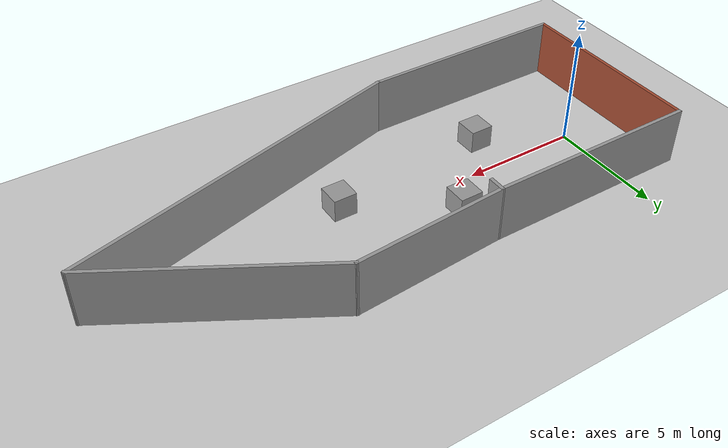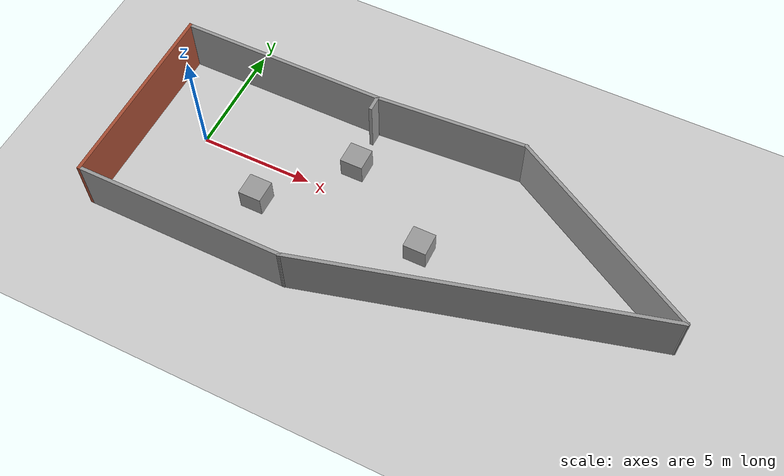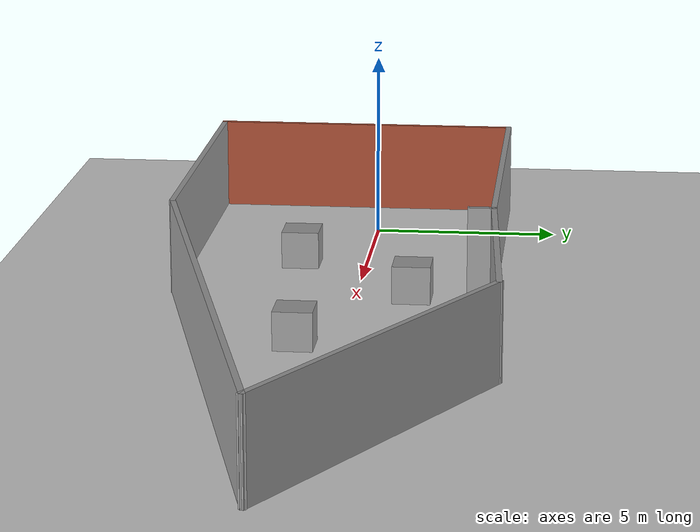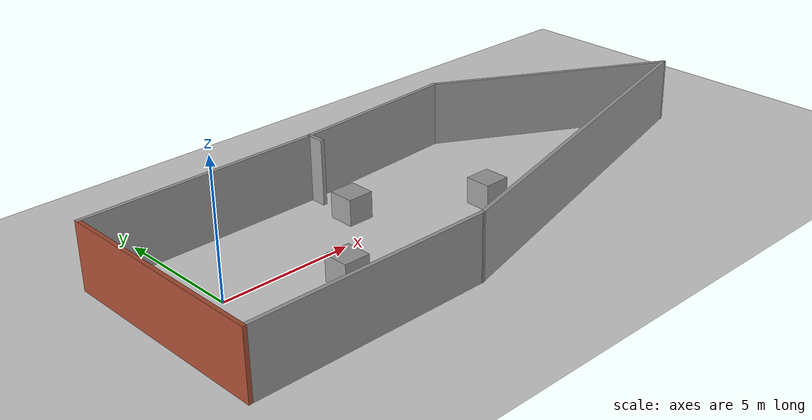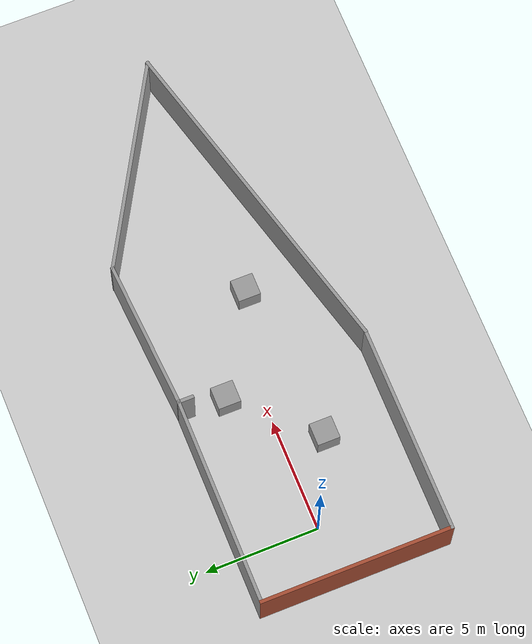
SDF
<sdf version="1.7">
 <world name="default">
  <light name="sun" type="directional">
   <pose>0 0 10 0 -0 0</pose>
   <diffuse>0.8 0.8 0.8 1</diffuse>
   <specular>0.2 0.2 0.2 1</specular>
   <attenuation>
    <range>1000</range>
    <constant>0.9</constant>
    <linear>0.01</linear>
    <quadratic>0.001</quadratic>
   </attenuation>
   <direction>-0.5 0.1 -0.9</direction>
   <spot><inner_angle>0</inner_angle><outer_angle>0</outer_angle><falloff>0</falloff></spot>
  </light>
  <model name="ground_plane">
   <static>1</static>
   <link name="link">
    <collision name="collision">
     <geometry><plane><normal>0 0 1</normal><size>100 100</size></plane></geometry>
     <surface><friction><ode><mu>100</mu><mu2>50</mu2></ode></friction></surface>
    </collision>
    <visual name="visual">
     <cast_shadows>0</cast_shadows>
     <geometry><plane><normal>0 0 1</normal><size>100 100</size></plane></geometry>
     <material>
      <script><uri>file://media/materials/scripts/gazebo.material</uri><name>Gazebo/Grey</name></script>
     </material>
    </visual>
   </link>
  </model>
  <gravity>0 0 -9.8</gravity>
  <magnetic_field>6e-06 2.3e-05 -4.2e-05</magnetic_field>
  <atmosphere type="adiabatic"/>
  <physics type="ode">
   <max_step_size>0.001</max_step_size>
   <real_time_factor>1</real_time_factor>
   <real_time_update_rate>1000</real_time_update_rate>
  </physics>
  <scene><ambient>0.4 0.4 0.4 1</ambient><background>0.7 0.7 0.7 1</background><shadows>1</shadows></scene>
  <spherical_coordinates>
   <surface_model>EARTH_WGS84</surface_model>
   <latitude_deg>0</latitude_deg>
   <longitude_deg>0</longitude_deg>
   <elevation>0</elevation>
   <heading_deg>0</heading_deg>
  </spherical_coordinates>
  <model name="map_wall">
   <pose>9.41719 -0.381459 0 0 -0 0</pose>
   <link name="Wall_0">
    <collision name="Wall_0_Collision">
     <geometry><box><size>9.25 0.15 2.5</size></box></geometry>
     <pose>0 0 1.25 0 -0 0</pose>
    </collision>
    <visual name="Wall_0_Visual">
     <pose>0 0 1.25 0 -0 0</pose>
     <geometry><box><size>9.25 0.15 2.5</size></box></geometry>
     <material>
      <script><uri>file://media/materials/scripts/gazebo.material</uri><name>Gazebo/Grey</name></script>
      <ambient>1 1 1 1</ambient>
     </material>
     <meta><layer>0</layer></meta>
    </visual>
    <pose>-7.42721 3.9584 0 0 -0 3.14156</pose>
   </link>
   <link name="Wall_1">
    <collision name="Wall_1_Collision">
     <geometry><box><size>8.5 0.15 2.5</size></box></geometry>
     <pose>0 0 1.25 0 -0 0</pose>
    </collision>
    <visual name="Wall_1_Visual">
     <pose>0 0 1.25 0 -0 0</pose>
     <geometry><box><size>8.5 0.15 2.5</size></box></geometry>
     <material>
      <script><uri>file://media/materials/scripts/gazebo.material</uri><name>Gazebo/Bricks</name></script>
      <ambient>0.760784 0.662745 0.627451 1</ambient>
     </material>
     <meta><layer>0</layer></meta>
    </visual>
    <pose>-11.9773 -0.216456 0 0 -0 -1.5708</pose>
   </link>
   <link name="Wall_2">
    <collision name="Wall_2_Collision">
     <geometry><box><size>9.25 0.15 2.5</size></box></geometry>
     <pose>0 0 1.25 0 -0 0</pose>
    </collision>
    <visual name="Wall_2_Visual">
     <pose>0 0 1.25 0 -0 0</pose>
     <geometry><box><size>9.25 0.15 2.5</size></box></geometry>
     <material>
      <script><uri>file://media/materials/scripts/gazebo.material</uri><name>Gazebo/Grey</name></script>
      <ambient>1 1 1 1</ambient>
     </material>
     <meta><layer>0</layer></meta>
    </visual>
    <pose>-7.42721 -4.39159 0 0 -0 -3.1e-05</pose>
   </link>
   <link name="Wall_3">
    <collision name="Wall_3_Collision">
     <geometry><box><size>15.5 0.15 2.5</size></box></geometry>
     <pose>0 0 1.25 0 -0 0</pose>
    </collision>
    <visual name="Wall_3_Visual">
     <pose>0 0 1.25 0 -0 0</pose>
     <geometry><box><size>15.5 0.15 2.5</size></box></geometry>
     <material>
      <script><uri>file://media/materials/scripts/gazebo.material</uri><name>Gazebo/Grey</name></script>
      <ambient>1 1 1 1</ambient>
     </material>
     <meta><layer>0</layer></meta>
    </visual>
    <pose>4.5364 -2.4053 0 0 -0 0.261799</pose>
   </link>
   <link name="Wall_4">
    <collision name="Wall_4_Collision">
     <geometry><box><size>9.75 0.15 2.5</size></box></geometry>
     <pose>0 0 1.25 0 -0 0</pose>
    </collision>
    <visual name="Wall_4_Visual">
     <pose>0 0 1.25 0 -0 0</pose>
     <geometry><box><size>9.75 0.15 2.5</size></box></geometry>
     <material>
      <script><uri>file://media/materials/scripts/gazebo.material</uri><name>Gazebo/Grey</name></script>
      <ambient>1 1 1 1</ambient>
     </material>
     <meta><layer>0</layer></meta>
    </visual>
    <pose>7.79296 1.98114 0 0 -0 2.61799</pose>
   </link>
   <link name="Wall_5">
    <collision name="Wall_5_Collision">
     <geometry><box><size>6.67683 0.15 2.5</size></box></geometry>
     <pose>0 0 1.25 0 -0 0</pose>
    </collision>
    <visual name="Wall_5_Visual">
     <pose>0 0 1.25 0 -0 0</pose>
     <geometry><box><size>6.67683 0.15 2.5</size></box></geometry>
     <material>
      <script><uri>file://media/materials/scripts/gazebo.material</uri><name>Gazebo/Grey</name></script>
      <ambient>1 1 1 1</ambient>
     </material>
     <meta><layer>0</layer></meta>
    </visual>
    <pose>0.379481 4.1697 0 0 -0 -3.07676</pose>
   </link>
   <link name="Wall_6">
    <collision name="Wall_6_Collision">
     <geometry><box><size>0.15 0.15 2.5</size></box></geometry>
     <pose>0 0 1.25 0 -0 0</pose>
    </collision>
    <visual name="Wall_6_Visual">
     <pose>0 0 1.25 0 -0 0</pose>
     <geometry><box><size>0.15 0.15 2.5</size></box></geometry>
     <material>
      <script><uri>file://media/materials/scripts/gazebo.material</uri><name>Gazebo/Grey</name></script>
      <ambient>1 1 1 1</ambient>
     </material>
     <meta><layer>0</layer></meta>
    </visual>
    <pose>-2.87708 3.95827 0 0 -0 0</pose>
   </link>
   <link name="Wall_7">
    <collision name="Wall_7_Collision">
     <geometry><box><size>0.75 0.15 2.5</size></box></geometry>
     <pose>0 0 1.25 0 -0 0</pose>
    </collision>
    <visual name="Wall_7_Visual">
     <pose>0 0 1.25 0 -0 0</pose>
     <geometry><box><size>0.75 0.15 2.5</size></box></geometry>
     <material>
      <script><uri>file://media/materials/scripts/gazebo.material</uri><name>Gazebo/Grey</name></script>
      <ambient>1 1 1 1</ambient>
     </material>
     <meta><layer>0</layer></meta>
    </visual>
    <pose>-2.87708 3.65827 0 0 -0 -1.5708</pose>
   </link>
   <static>1</static>
  </model>
  <model name="unit_box">
   <pose>3.57049 -1.75477 0.499995 0 1e-05 0</pose>
   <link name="link">
    <inertial>
     <mass>1</mass>
     <inertia>
      <ixx>0.166667</ixx>
      <ixy>0</ixy>
      <ixz>0</ixz>
      <iyy>0.166667</iyy>
      <iyz>0</iyz>
      <izz>0.166667</izz>
     </inertia>
    </inertial>
    <collision name="collision"><geometry><box><size>1 1 1</size></box></geometry></collision>
    <visual name="visual">
     <geometry><box><size>1 1 1</size></box></geometry>
     <material>
      <script><name>Gazebo/Grey</name><uri>file://media/materials/scripts/gazebo.material</uri></script>
     </material>
    </visual>
   </link>
  </model>
  <model name="unit_box_0">
   <pose>6.57003 1.48891 0.499995 -1e-05 -0 0</pose>
   <link name="link">
    <inertial>
     <mass>1</mass>
     <inertia>
      <ixx>0.166667</ixx>
      <ixy>0</ixy>
      <ixz>0</ixz>
      <iyy>0.166667</iyy>
      <iyz>0</iyz>
      <izz>0.166667</izz>
     </inertia>
    </inertial>
    <collision name="collision"><geometry><box><size>1 1 1</size></box></geometry></collision>
    <visual name="visual">
     <geometry><box><size>1 1 1</size></box></geometry>
     <material>
      <script><name>Gazebo/Grey</name><uri>file://media/materials/scripts/gazebo.material</uri></script>
     </material>
    </visual>
   </link>
  </model>
  <model name="unit_box_1">
   <pose>10.7119 -1.07174 0.5 0 -0 0</pose>
   <link name="link">
    <inertial>
     <mass>1</mass>
     <inertia>
      <ixx>0.166667</ixx>
      <ixy>0</ixy>
      <ixz>0</ixz>
      <iyy>0.166667</iyy>
      <iyz>0</iyz>
      <izz>0.166667</izz>
     </inertia>
    </inertial>
    <collision name="collision"><geometry><box><size>1 1 1</size></box></geometry></collision>
    <visual name="visual">
     <geometry><box><size>1 1 1</size></box></geometry>
     <material>
      <script><name>Gazebo/Grey</name><uri>file://media/materials/scripts/gazebo.material</uri></script>
     </material>
    </visual>
   </link>
  </model>
 </world>
</sdf>
